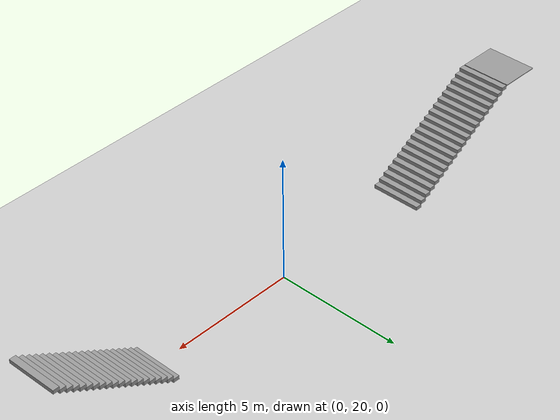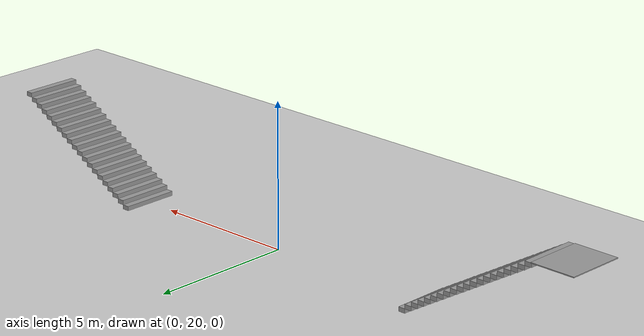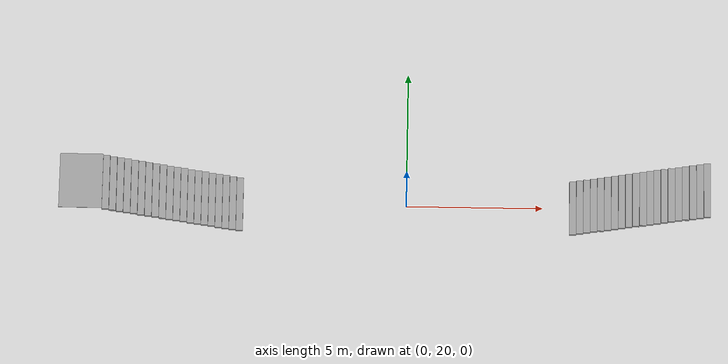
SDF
<sdf version="1.7">
 <world name="world">
  <model name="ground_plane">
   <static>1</static>
   <link name="link">
    <collision name="collision">
     <geometry><plane><normal>0 0 1</normal><size>100 100</size></plane></geometry>
     <surface><friction><ode><mu>100</mu><mu2>50</mu2></ode></friction></surface>
    </collision>
    <visual name="visual">
     <cast_shadows>0</cast_shadows>
     <geometry><plane><normal>0 0 1</normal><size>100 100</size></plane></geometry>
     <material>
      <script><uri>file://media/materials/scripts/gazebo.material</uri><name>Gazebo/Grey</name></script>
     </material>
    </visual>
   </link>
   <pose>0 0 -0.1 0 -0 0</pose>
  </model>
  <model name="aws_hospital_world_custom_stairs">
   <pose>-0.01111 10.5021 0 0 -0 0</pose>
   <link name="Stairs_3">
    <visual name="Stairs_3_Visual_0">
     <pose>6.11548 9.50208 0.075 0 -0 1.5708</pose>
     <geometry><box><size>2 0.25 0.15</size></box></geometry>
     <material>
      <script><uri>file://media/materials/scripts/gazebo.material</uri><name>Gazebo/Grey</name></script>
      <ambient>1 1 1 1</ambient>
     </material>
     <meta><layer>0</layer></meta>
    </visual>
    <collision name="Stairs_3_Collision_0">
     <geometry><box><size>2 0.25 0.15</size></box></geometry>
     <pose>6.11548 9.50208 0.075 0 -0 1.5708</pose>
    </collision>
    <visual name="Stairs_3_Visual_1">
     <pose>6.36548 9.50208 0.225 0 -0 1.5708</pose>
     <geometry><box><size>2 0.25 0.15</size></box></geometry>
     <material>
      <script><uri>file://media/materials/scripts/gazebo.material</uri><name>Gazebo/Grey</name></script>
      <ambient>1 1 1 1</ambient>
     </material>
     <meta><layer>0</layer></meta>
    </visual>
    <collision name="Stairs_3_Collision_1">
     <geometry><box><size>2 0.25 0.15</size></box></geometry>
     <pose>6.36548 9.50208 0.225 0 -0 1.5708</pose>
    </collision>
    <visual name="Stairs_3_Visual_2">
     <pose>6.61548 9.50208 0.375 0 -0 1.5708</pose>
     <geometry><box><size>2 0.25 0.15</size></box></geometry>
     <material>
      <script><uri>file://media/materials/scripts/gazebo.material</uri><name>Gazebo/Grey</name></script>
      <ambient>1 1 1 1</ambient>
     </material>
     <meta><layer>0</layer></meta>
    </visual>
    <collision name="Stairs_3_Collision_2">
     <geometry><box><size>2 0.25 0.15</size></box></geometry>
     <pose>6.61548 9.50208 0.375 0 -0 1.5708</pose>
    </collision>
    <visual name="Stairs_3_Visual_3">
     <pose>6.86548 9.50208 0.525 0 -0 1.5708</pose>
     <geometry><box><size>2 0.25 0.15</size></box></geometry>
     <material>
      <script><uri>file://media/materials/scripts/gazebo.material</uri><name>Gazebo/Grey</name></script>
      <ambient>1 1 1 1</ambient>
     </material>
     <meta><layer>0</layer></meta>
    </visual>
    <collision name="Stairs_3_Collision_3">
     <geometry><box><size>2 0.25 0.15</size></box></geometry>
     <pose>6.86548 9.50208 0.525 0 -0 1.5708</pose>
    </collision>
    <visual name="Stairs_3_Visual_4">
     <pose>7.11548 9.50208 0.675 0 -0 1.5708</pose>
     <geometry><box><size>2 0.25 0.15</size></box></geometry>
     <material>
      <script><uri>file://media/materials/scripts/gazebo.material</uri><name>Gazebo/Grey</name></script>
      <ambient>1 1 1 1</ambient>
     </material>
     <meta><layer>0</layer></meta>
    </visual>
    <collision name="Stairs_3_Collision_4">
     <geometry><box><size>2 0.25 0.15</size></box></geometry>
     <pose>7.11548 9.50208 0.675 0 -0 1.5708</pose>
    </collision>
    <visual name="Stairs_3_Visual_5">
     <pose>7.36548 9.50208 0.825 0 -0 1.5708</pose>
     <geometry><box><size>2 0.25 0.15</size></box></geometry>
     <material>
      <script><uri>file://media/materials/scripts/gazebo.material</uri><name>Gazebo/Grey</name></script>
      <ambient>1 1 1 1</ambient>
     </material>
     <meta><layer>0</layer></meta>
    </visual>
    <collision name="Stairs_3_Collision_5">
     <geometry><box><size>2 0.25 0.15</size></box></geometry>
     <pose>7.36548 9.50208 0.825 0 -0 1.5708</pose>
    </collision>
    <visual name="Stairs_3_Visual_6">
     <pose>7.61548 9.50208 0.975 0 -0 1.5708</pose>
     <geometry><box><size>2 0.25 0.15</size></box></geometry>
     <material>
      <script><uri>file://media/materials/scripts/gazebo.material</uri><name>Gazebo/Grey</name></script>
      <ambient>1 1 1 1</ambient>
     </material>
     <meta><layer>0</layer></meta>
    </visual>
    <collision name="Stairs_3_Collision_6">
     <geometry><box><size>2 0.25 0.15</size></box></geometry>
     <pose>7.61548 9.50208 0.975 0 -0 1.5708</pose>
    </collision>
    <visual name="Stairs_3_Visual_7">
     <pose>7.86548 9.50208 1.125 0 -0 1.5708</pose>
     <geometry><box><size>2 0.25 0.15</size></box></geometry>
     <material>
      <script><uri>file://media/materials/scripts/gazebo.material</uri><name>Gazebo/Grey</name></script>
      <ambient>1 1 1 1</ambient>
     </material>
     <meta><layer>0</layer></meta>
    </visual>
    <collision name="Stairs_3_Collision_7">
     <geometry><box><size>2 0.25 0.15</size></box></geometry>
     <pose>7.86548 9.50208 1.125 0 -0 1.5708</pose>
    </collision>
    <visual name="Stairs_3_Visual_8">
     <pose>8.11548 9.50208 1.275 0 -0 1.5708</pose>
     <geometry><box><size>2 0.25 0.15</size></box></geometry>
     <material>
      <script><uri>file://media/materials/scripts/gazebo.material</uri><name>Gazebo/Grey</name></script>
      <ambient>1 1 1 1</ambient>
     </material>
     <meta><layer>0</layer></meta>
    </visual>
    <collision name="Stairs_3_Collision_8">
     <geometry><box><size>2 0.25 0.15</size></box></geometry>
     <pose>8.11548 9.50208 1.275 0 -0 1.5708</pose>
    </collision>
    <visual name="Stairs_3_Visual_9">
     <pose>8.36548 9.50208 1.425 0 -0 1.5708</pose>
     <geometry><box><size>2 0.25 0.15</size></box></geometry>
     <material>
      <script><uri>file://media/materials/scripts/gazebo.material</uri><name>Gazebo/Grey</name></script>
      <ambient>1 1 1 1</ambient>
     </material>
     <meta><layer>0</layer></meta>
    </visual>
    <collision name="Stairs_3_Collision_9">
     <geometry><box><size>2 0.25 0.15</size></box></geometry>
     <pose>8.36548 9.50208 1.425 0 -0 1.5708</pose>
    </collision>
    <visual name="Stairs_3_Visual_10">
     <pose>8.61548 9.50208 1.575 0 -0 1.5708</pose>
     <geometry><box><size>2 0.25 0.15</size></box></geometry>
     <material>
      <script><uri>file://media/materials/scripts/gazebo.material</uri><name>Gazebo/Grey</name></script>
      <ambient>1 1 1 1</ambient>
     </material>
     <meta><layer>0</layer></meta>
    </visual>
    <collision name="Stairs_3_Collision_10">
     <geometry><box><size>2 0.25 0.15</size></box></geometry>
     <pose>8.61548 9.50208 1.575 0 -0 1.5708</pose>
    </collision>
    <visual name="Stairs_3_Visual_11">
     <pose>8.86548 9.50208 1.725 0 -0 1.5708</pose>
     <geometry><box><size>2 0.25 0.15</size></box></geometry>
     <material>
      <script><uri>file://media/materials/scripts/gazebo.material</uri><name>Gazebo/Grey</name></script>
      <ambient>1 1 1 1</ambient>
     </material>
     <meta><layer>0</layer></meta>
    </visual>
    <collision name="Stairs_3_Collision_11">
     <geometry><box><size>2 0.25 0.15</size></box></geometry>
     <pose>8.86548 9.50208 1.725 0 -0 1.5708</pose>
    </collision>
    <visual name="Stairs_3_Visual_12">
     <pose>9.11548 9.50208 1.875 0 -0 1.5708</pose>
     <geometry><box><size>2 0.25 0.15</size></box></geometry>
     <material>
      <script><uri>file://media/materials/scripts/gazebo.material</uri><name>Gazebo/Grey</name></script>
      <ambient>1 1 1 1</ambient>
     </material>
     <meta><layer>0</layer></meta>
    </visual>
    <collision name="Stairs_3_Collision_12">
     <geometry><box><size>2 0.25 0.15</size></box></geometry>
     <pose>9.11548 9.50208 1.875 0 -0 1.5708</pose>
    </collision>
    <visual name="Stairs_3_Visual_13">
     <pose>9.36548 9.50208 2.025 0 -0 1.5708</pose>
     <geometry><box><size>2 0.25 0.15</size></box></geometry>
     <material>
      <script><uri>file://media/materials/scripts/gazebo.material</uri><name>Gazebo/Grey</name></script>
      <ambient>1 1 1 1</ambient>
     </material>
     <meta><layer>0</layer></meta>
    </visual>
    <collision name="Stairs_3_Collision_13">
     <geometry><box><size>2 0.25 0.15</size></box></geometry>
     <pose>9.36548 9.50208 2.025 0 -0 1.5708</pose>
    </collision>
    <visual name="Stairs_3_Visual_14">
     <pose>9.61548 9.50208 2.175 0 -0 1.5708</pose>
     <geometry><box><size>2 0.25 0.15</size></box></geometry>
     <material>
      <script><uri>file://media/materials/scripts/gazebo.material</uri><name>Gazebo/Grey</name></script>
      <ambient>1 1 1 1</ambient>
     </material>
     <meta><layer>0</layer></meta>
    </visual>
    <collision name="Stairs_3_Collision_14">
     <geometry><box><size>2 0.25 0.15</size></box></geometry>
     <pose>9.61548 9.50208 2.175 0 -0 1.5708</pose>
    </collision>
    <visual name="Stairs_3_Visual_15">
     <pose>9.86548 9.50208 2.325 0 -0 1.5708</pose>
     <geometry><box><size>2 0.25 0.15</size></box></geometry>
     <material>
      <script><uri>file://media/materials/scripts/gazebo.material</uri><name>Gazebo/Grey</name></script>
      <ambient>1 1 1 1</ambient>
     </material>
     <meta><layer>0</layer></meta>
    </visual>
    <collision name="Stairs_3_Collision_15">
     <geometry><box><size>2 0.25 0.15</size></box></geometry>
     <pose>9.86548 9.50208 2.325 0 -0 1.5708</pose>
    </collision>
    <visual name="Stairs_3_Visual_16">
     <pose>10.1155 9.50208 2.475 0 -0 1.5708</pose>
     <geometry><box><size>2 0.25 0.15</size></box></geometry>
     <material>
      <script><uri>file://media/materials/scripts/gazebo.material</uri><name>Gazebo/Grey</name></script>
      <ambient>1 1 1 1</ambient>
     </material>
     <meta><layer>0</layer></meta>
    </visual>
    <collision name="Stairs_3_Collision_16">
     <geometry><box><size>2 0.25 0.15</size></box></geometry>
     <pose>10.1155 9.50208 2.475 0 -0 1.5708</pose>
    </collision>
    <visual name="Stairs_3_Visual_17">
     <pose>10.3655 9.50208 2.625 0 -0 1.5708</pose>
     <geometry><box><size>2 0.25 0.15</size></box></geometry>
     <material>
      <script><uri>file://media/materials/scripts/gazebo.material</uri><name>Gazebo/Grey</name></script>
      <ambient>1 1 1 1</ambient>
     </material>
     <meta><layer>0</layer></meta>
    </visual>
    <collision name="Stairs_3_Collision_17">
     <geometry><box><size>2 0.25 0.15</size></box></geometry>
     <pose>10.3655 9.50208 2.625 0 -0 1.5708</pose>
    </collision>
    <visual name="Stairs_3_Visual_18">
     <pose>10.6155 9.50208 2.775 0 -0 1.5708</pose>
     <geometry><box><size>2 0.25 0.15</size></box></geometry>
     <material>
      <script><uri>file://media/materials/scripts/gazebo.material</uri><name>Gazebo/Grey</name></script>
      <ambient>1 1 1 1</ambient>
     </material>
     <meta><layer>0</layer></meta>
    </visual>
    <collision name="Stairs_3_Collision_18">
     <geometry><box><size>2 0.25 0.15</size></box></geometry>
     <pose>10.6155 9.50208 2.775 0 -0 1.5708</pose>
    </collision>
    <visual name="Stairs_3_Visual_19">
     <pose>10.8655 9.50208 2.925 0 -0 1.5708</pose>
     <geometry><box><size>2 0.25 0.15</size></box></geometry>
     <material>
      <script><uri>file://media/materials/scripts/gazebo.material</uri><name>Gazebo/Grey</name></script>
      <ambient>1 1 1 1</ambient>
     </material>
     <meta><layer>0</layer></meta>
    </visual>
    <collision name="Stairs_3_Collision_19">
     <geometry><box><size>2 0.25 0.15</size></box></geometry>
     <pose>10.8655 9.50208 2.925 0 -0 1.5708</pose>
    </collision>
   </link>
   <link name="Stairs_5">
    <visual name="Stairs_5_Visual_0">
     <pose>-6.11548 9.4651 0.075 0 0 -1.5708</pose>
     <geometry><box><size>2 0.25 0.15</size></box></geometry>
     <material>
      <script><uri>file://media/materials/scripts/gazebo.material</uri><name>Gazebo/Grey</name></script>
      <ambient>1 1 1 1</ambient>
     </material>
     <meta><layer>0</layer></meta>
    </visual>
    <collision name="Stairs_5_Collision_0">
     <geometry><box><size>2 0.25 0.15</size></box></geometry>
     <pose>-6.11548 9.4651 0.075 0 0 -1.5708</pose>
    </collision>
    <visual name="Stairs_5_Visual_1">
     <pose>-6.36548 9.4651 0.225 0 0 -1.5708</pose>
     <geometry><box><size>2 0.25 0.15</size></box></geometry>
     <material>
      <script><uri>file://media/materials/scripts/gazebo.material</uri><name>Gazebo/Grey</name></script>
      <ambient>1 1 1 1</ambient>
     </material>
     <meta><layer>0</layer></meta>
    </visual>
    <collision name="Stairs_5_Collision_1">
     <geometry><box><size>2 0.25 0.15</size></box></geometry>
     <pose>-6.36548 9.4651 0.225 0 0 -1.5708</pose>
    </collision>
    <visual name="Stairs_5_Visual_2">
     <pose>-6.61548 9.4651 0.375 0 0 -1.5708</pose>
     <geometry><box><size>2 0.25 0.15</size></box></geometry>
     <material>
      <script><uri>file://media/materials/scripts/gazebo.material</uri><name>Gazebo/Grey</name></script>
      <ambient>1 1 1 1</ambient>
     </material>
     <meta><layer>0</layer></meta>
    </visual>
    <collision name="Stairs_5_Collision_2">
     <geometry><box><size>2 0.25 0.15</size></box></geometry>
     <pose>-6.61548 9.4651 0.375 0 0 -1.5708</pose>
    </collision>
    <visual name="Stairs_5_Visual_3">
     <pose>-6.86548 9.4651 0.525 0 0 -1.5708</pose>
     <geometry><box><size>2 0.25 0.15</size></box></geometry>
     <material>
      <script><uri>file://media/materials/scripts/gazebo.material</uri><name>Gazebo/Grey</name></script>
      <ambient>1 1 1 1</ambient>
     </material>
     <meta><layer>0</layer></meta>
    </visual>
    <collision name="Stairs_5_Collision_3">
     <geometry><box><size>2 0.25 0.15</size></box></geometry>
     <pose>-6.86548 9.4651 0.525 0 0 -1.5708</pose>
    </collision>
    <visual name="Stairs_5_Visual_4">
     <pose>-7.11548 9.4651 0.675 0 0 -1.5708</pose>
     <geometry><box><size>2 0.25 0.15</size></box></geometry>
     <material>
      <script><uri>file://media/materials/scripts/gazebo.material</uri><name>Gazebo/Grey</name></script>
      <ambient>1 1 1 1</ambient>
     </material>
     <meta><layer>0</layer></meta>
    </visual>
    <collision name="Stairs_5_Collision_4">
     <geometry><box><size>2 0.25 0.15</size></box></geometry>
     <pose>-7.11548 9.4651 0.675 0 0 -1.5708</pose>
    </collision>
    <visual name="Stairs_5_Visual_5">
     <pose>-7.36548 9.4651 0.825 0 0 -1.5708</pose>
     <geometry><box><size>2 0.25 0.15</size></box></geometry>
     <material>
      <script><uri>file://media/materials/scripts/gazebo.material</uri><name>Gazebo/Grey</name></script>
      <ambient>1 1 1 1</ambient>
     </material>
     <meta><layer>0</layer></meta>
    </visual>
    <collision name="Stairs_5_Collision_5">
     <geometry><box><size>2 0.25 0.15</size></box></geometry>
     <pose>-7.36548 9.4651 0.825 0 0 -1.5708</pose>
    </collision>
    <visual name="Stairs_5_Visual_6">
     <pose>-7.61548 9.4651 0.975 0 0 -1.5708</pose>
     <geometry><box><size>2 0.25 0.15</size></box></geometry>
     <material>
      <script><uri>file://media/materials/scripts/gazebo.material</uri><name>Gazebo/Grey</name></script>
      <ambient>1 1 1 1</ambient>
     </material>
     <meta><layer>0</layer></meta>
    </visual>
    <collision name="Stairs_5_Collision_6">
     <geometry><box><size>2 0.25 0.15</size></box></geometry>
     <pose>-7.61548 9.4651 0.975 0 0 -1.5708</pose>
    </collision>
    <visual name="Stairs_5_Visual_7">
     <pose>-7.86548 9.4651 1.125 0 0 -1.5708</pose>
     <geometry><box><size>2 0.25 0.15</size></box></geometry>
     <material>
      <script><uri>file://media/materials/scripts/gazebo.material</uri><name>Gazebo/Grey</name></script>
      <ambient>1 1 1 1</ambient>
     </material>
     <meta><layer>0</layer></meta>
    </visual>
    <collision name="Stairs_5_Collision_7">
     <geometry><box><size>2 0.25 0.15</size></box></geometry>
     <pose>-7.86548 9.4651 1.125 0 0 -1.5708</pose>
    </collision>
    <visual name="Stairs_5_Visual_8">
     <pose>-8.11548 9.4651 1.275 0 0 -1.5708</pose>
     <geometry><box><size>2 0.25 0.15</size></box></geometry>
     <material>
      <script><uri>file://media/materials/scripts/gazebo.material</uri><name>Gazebo/Grey</name></script>
      <ambient>1 1 1 1</ambient>
     </material>
     <meta><layer>0</layer></meta>
    </visual>
    <collision name="Stairs_5_Collision_8">
     <geometry><box><size>2 0.25 0.15</size></box></geometry>
     <pose>-8.11548 9.4651 1.275 0 0 -1.5708</pose>
    </collision>
    <visual name="Stairs_5_Visual_9">
     <pose>-8.36548 9.4651 1.425 0 0 -1.5708</pose>
     <geometry><box><size>2 0.25 0.15</size></box></geometry>
     <material>
      <script><uri>file://media/materials/scripts/gazebo.material</uri><name>Gazebo/Grey</name></script>
      <ambient>1 1 1 1</ambient>
     </material>
     <meta><layer>0</layer></meta>
    </visual>
    <collision name="Stairs_5_Collision_9">
     <geometry><box><size>2 0.25 0.15</size></box></geometry>
     <pose>-8.36548 9.4651 1.425 0 0 -1.5708</pose>
    </collision>
    <visual name="Stairs_5_Visual_10">
     <pose>-8.61548 9.4651 1.575 0 0 -1.5708</pose>
     <geometry><box><size>2 0.25 0.15</size></box></geometry>
     <material>
      <script><uri>file://media/materials/scripts/gazebo.material</uri><name>Gazebo/Grey</name></script>
      <ambient>1 1 1 1</ambient>
     </material>
     <meta><layer>0</layer></meta>
    </visual>
    <collision name="Stairs_5_Collision_10">
     <geometry><box><size>2 0.25 0.15</size></box></geometry>
     <pose>-8.61548 9.4651 1.575 0 0 -1.5708</pose>
    </collision>
    <visual name="Stairs_5_Visual_11">
     <pose>-8.86548 9.4651 1.725 0 0 -1.5708</pose>
     <geometry><box><size>2 0.25 0.15</size></box></geometry>
     <material>
      <script><uri>file://media/materials/scripts/gazebo.material</uri><name>Gazebo/Grey</name></script>
      <ambient>1 1 1 1</ambient>
     </material>
     <meta><layer>0</layer></meta>
    </visual>
    <collision name="Stairs_5_Collision_11">
     <geometry><box><size>2 0.25 0.15</size></box></geometry>
     <pose>-8.86548 9.4651 1.725 0 0 -1.5708</pose>
    </collision>
    <visual name="Stairs_5_Visual_12">
     <pose>-9.11548 9.4651 1.875 0 0 -1.5708</pose>
     <geometry><box><size>2 0.25 0.15</size></box></geometry>
     <material>
      <script><uri>file://media/materials/scripts/gazebo.material</uri><name>Gazebo/Grey</name></script>
      <ambient>1 1 1 1</ambient>
     </material>
     <meta><layer>0</layer></meta>
    </visual>
    <collision name="Stairs_5_Collision_12">
     <geometry><box><size>2 0.25 0.15</size></box></geometry>
     <pose>-9.11548 9.4651 1.875 0 0 -1.5708</pose>
    </collision>
    <visual name="Stairs_5_Visual_13">
     <pose>-9.36548 9.4651 2.025 0 0 -1.5708</pose>
     <geometry><box><size>2 0.25 0.15</size></box></geometry>
     <material>
      <script><uri>file://media/materials/scripts/gazebo.material</uri><name>Gazebo/Grey</name></script>
      <ambient>1 1 1 1</ambient>
     </material>
     <meta><layer>0</layer></meta>
    </visual>
    <collision name="Stairs_5_Collision_13">
     <geometry><box><size>2 0.25 0.15</size></box></geometry>
     <pose>-9.36548 9.4651 2.025 0 0 -1.5708</pose>
    </collision>
    <visual name="Stairs_5_Visual_14">
     <pose>-9.61548 9.4651 2.175 0 0 -1.5708</pose>
     <geometry><box><size>2 0.25 0.15</size></box></geometry>
     <material>
      <script><uri>file://media/materials/scripts/gazebo.material</uri><name>Gazebo/Grey</name></script>
      <ambient>1 1 1 1</ambient>
     </material>
     <meta><layer>0</layer></meta>
    </visual>
    <collision name="Stairs_5_Collision_14">
     <geometry><box><size>2 0.25 0.15</size></box></geometry>
     <pose>-9.61548 9.4651 2.175 0 0 -1.5708</pose>
    </collision>
    <visual name="Stairs_5_Visual_15">
     <pose>-9.86548 9.4651 2.325 0 0 -1.5708</pose>
     <geometry><box><size>2 0.25 0.15</size></box></geometry>
     <material>
      <script><uri>file://media/materials/scripts/gazebo.material</uri><name>Gazebo/Grey</name></script>
      <ambient>1 1 1 1</ambient>
     </material>
     <meta><layer>0</layer></meta>
    </visual>
    <collision name="Stairs_5_Collision_15">
     <geometry><box><size>2 0.25 0.15</size></box></geometry>
     <pose>-9.86548 9.4651 2.325 0 0 -1.5708</pose>
    </collision>
    <visual name="Stairs_5_Visual_16">
     <pose>-10.1155 9.4651 2.475 0 0 -1.5708</pose>
     <geometry><box><size>2 0.25 0.15</size></box></geometry>
     <material>
      <script><uri>file://media/materials/scripts/gazebo.material</uri><name>Gazebo/Grey</name></script>
      <ambient>1 1 1 1</ambient>
     </material>
     <meta><layer>0</layer></meta>
    </visual>
    <collision name="Stairs_5_Collision_16">
     <geometry><box><size>2 0.25 0.15</size></box></geometry>
     <pose>-10.1155 9.4651 2.475 0 0 -1.5708</pose>
    </collision>
    <visual name="Stairs_5_Visual_17">
     <pose>-10.3655 9.4651 2.625 0 0 -1.5708</pose>
     <geometry><box><size>2 0.25 0.15</size></box></geometry>
     <material>
      <script><uri>file://media/materials/scripts/gazebo.material</uri><name>Gazebo/Grey</name></script>
      <ambient>1 1 1 1</ambient>
     </material>
     <meta><layer>0</layer></meta>
    </visual>
    <collision name="Stairs_5_Collision_17">
     <geometry><box><size>2 0.25 0.15</size></box></geometry>
     <pose>-10.3655 9.4651 2.625 0 0 -1.5708</pose>
    </collision>
    <visual name="Stairs_5_Visual_18">
     <pose>-10.6155 9.4651 2.775 0 0 -1.5708</pose>
     <geometry><box><size>2 0.25 0.15</size></box></geometry>
     <material>
      <script><uri>file://media/materials/scripts/gazebo.material</uri><name>Gazebo/Grey</name></script>
      <ambient>1 1 1 1</ambient>
     </material>
     <meta><layer>0</layer></meta>
    </visual>
    <collision name="Stairs_5_Collision_18">
     <geometry><box><size>2 0.25 0.15</size></box></geometry>
     <pose>-10.6155 9.4651 2.775 0 0 -1.5708</pose>
    </collision>
    <visual name="Stairs_5_Visual_19">
     <pose>-10.8655 9.4651 2.925 0 0 -1.5708</pose>
     <geometry><box><size>2 0.25 0.15</size></box></geometry>
     <material>
      <script><uri>file://media/materials/scripts/gazebo.material</uri><name>Gazebo/Grey</name></script>
      <ambient>1 1 1 1</ambient>
     </material>
     <meta><layer>0</layer></meta>
    </visual>
    <collision name="Stairs_5_Collision_19">
     <geometry><box><size>2 0.25 0.15</size></box></geometry>
     <pose>-10.8655 9.4651 2.925 0 0 -1.5708</pose>
    </collision>
   </link>
   <static>1</static>
  </model>
  <model name="unit_box_clone">
   <pose>-11.7796 20.0045 3.01758 9.6e-05 -1.5e-05 -0.00472</pose>
   <link name="link">
    <inertial>
     <mass>1</mass>
     <inertia>
      <ixx>0.166667</ixx>
      <ixy>0</ixy>
      <ixz>0</ixz>
      <iyy>0.166667</iyy>
      <iyz>0</iyz>
      <izz>0.166667</izz>
     </inertia>
    </inertial>
    <collision name="collision"><geometry><box><size>1.56145 2.01104 0.031322</size></box></geometry></collision>
    <visual name="visual">
     <geometry><box><size>1.56145 2.01104 0.031322</size></box></geometry>
     <material>
      <script><name>Gazebo/Grey</name><uri>file://media/materials/scripts/gazebo.material</uri></script>
     </material>
    </visual>
   </link>
  </model>
 </world>
</sdf>
